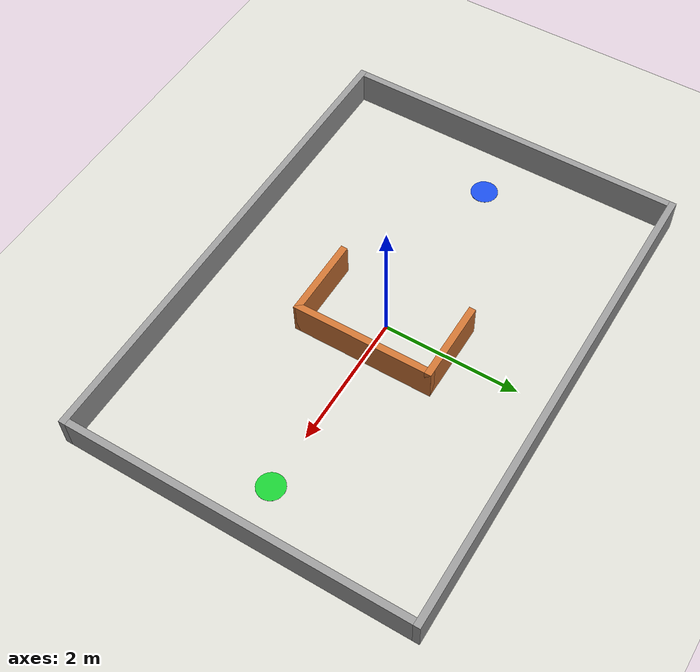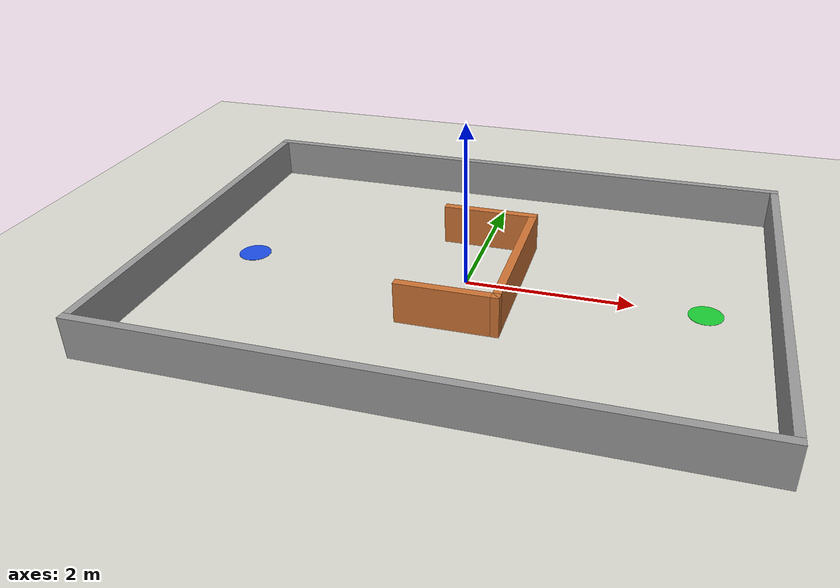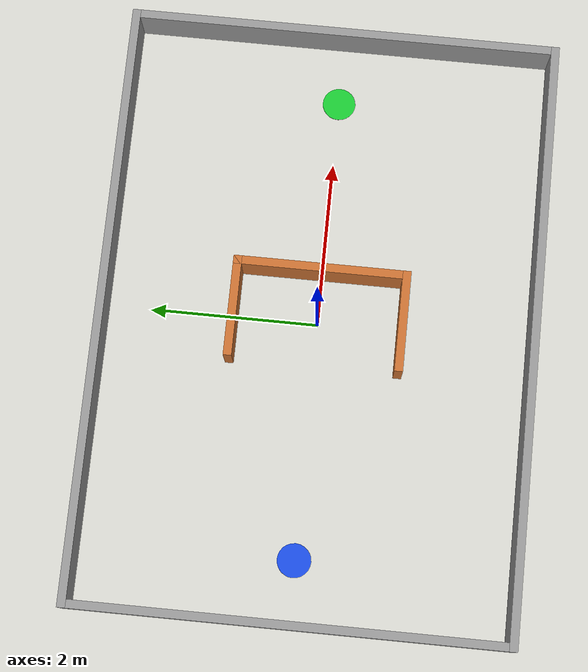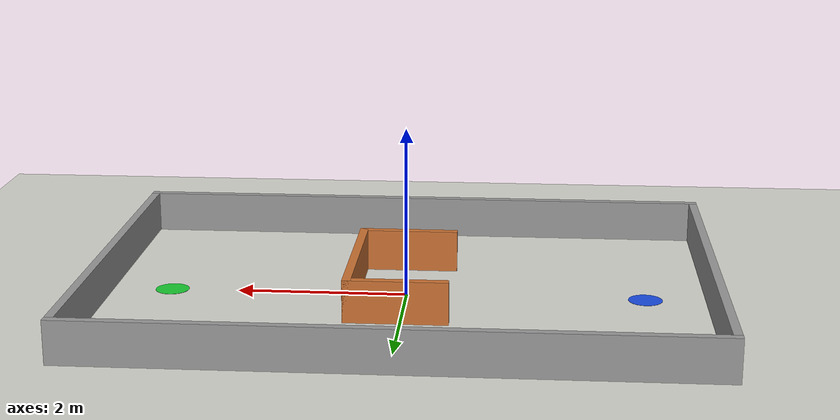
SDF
<?xml version="1.0"?>
<!-- AUTO-GENERATED by tb3_nav_task/worlds.py (u_trap): U-shaped cul-de-sac on the start-goal line (local-minimum test). Edit the Python spec, not this file. -->
<sdf version="1.8">
  <world name="u_trap">
    <physics name="default_physics" type="dart">
      <max_step_size>0.002</max_step_size>
      <real_time_factor>1.0</real_time_factor>
      <real_time_update_rate>500</real_time_update_rate>
    </physics>
    <plugin filename="gz-sim-physics-system" name="gz::sim::systems::Physics"/>
    <plugin filename="gz-sim-user-commands-system" name="gz::sim::systems::UserCommands"/>
    <plugin filename="gz-sim-scene-broadcaster-system" name="gz::sim::systems::SceneBroadcaster"/>
    <plugin filename="gz-sim-sensors-system" name="gz::sim::systems::Sensors">
      <render_engine>ogre2</render_engine>
    </plugin>
    <plugin filename="gz-sim-imu-system" name="gz::sim::systems::Imu"/>
    <scene>
      <ambient>0.6 0.6 0.6 1</ambient>
      <background>0.75 0.8 0.9 1</background>
      <shadows>false</shadows>
    </scene>
    <light type="directional" name="sun">
      <cast_shadows>false</cast_shadows>
      <pose>0 0 10 0 0 0</pose>
      <diffuse>0.9 0.9 0.9 1</diffuse>
      <specular>0.2 0.2 0.2 1</specular>
      <direction>-0.3 0.2 -0.9</direction>
    </light>
    <model name="ground_plane">
      <static>true</static>
      <link name="link">
        <collision name="c"><geometry><plane><normal>0 0 1</normal><size>20 20</size></plane></geometry></collision>
        <visual name="v"><geometry><plane><normal>0 0 1</normal><size>20 20</size></plane></geometry><material><ambient>0.85 0.85 0.82 1</ambient><diffuse>0.85 0.85 0.82 1</diffuse><specular>0.1 0.1 0.1 1</specular></material></visual>
      </link>
    </model>
    <model name="wall_north"><static>true</static><pose>0.0 2.55 0.25 0 0 0.0</pose><link name="link"><collision name="c"><geometry><box><size>7.2 0.1 0.5</size></box></geometry></collision><visual name="v"><geometry><box><size>7.2 0.1 0.5</size></box></geometry><material><ambient>0.6 0.6 0.6 1</ambient><diffuse>0.6 0.6 0.6 1</diffuse><specular>0.1 0.1 0.1 1</specular></material></visual></link></model>
    <model name="wall_south"><static>true</static><pose>0.0 -2.55 0.25 0 0 0.0</pose><link name="link"><collision name="c"><geometry><box><size>7.2 0.1 0.5</size></box></geometry></collision><visual name="v"><geometry><box><size>7.2 0.1 0.5</size></box></geometry><material><ambient>0.6 0.6 0.6 1</ambient><diffuse>0.6 0.6 0.6 1</diffuse><specular>0.1 0.1 0.1 1</specular></material></visual></link></model>
    <model name="wall_east"><static>true</static><pose>3.55 0.0 0.25 0 0 0.0</pose><link name="link"><collision name="c"><geometry><box><size>0.1 5.0 0.5</size></box></geometry></collision><visual name="v"><geometry><box><size>0.1 5.0 0.5</size></box></geometry><material><ambient>0.6 0.6 0.6 1</ambient><diffuse>0.6 0.6 0.6 1</diffuse><specular>0.1 0.1 0.1 1</specular></material></visual></link></model>
    <model name="wall_west"><static>true</static><pose>-3.55 0.0 0.25 0 0 0.0</pose><link name="link"><collision name="c"><geometry><box><size>0.1 5.0 0.5</size></box></geometry></collision><visual name="v"><geometry><box><size>0.1 5.0 0.5</size></box></geometry><material><ambient>0.6 0.6 0.6 1</ambient><diffuse>0.6 0.6 0.6 1</diffuse><specular>0.1 0.1 0.1 1</specular></material></visual></link></model>
    <model name="u_back"><static>true</static><pose>0.6 0.0 0.25 0 0 0.0</pose><link name="link"><collision name="c"><geometry><box><size>0.1 2.1 0.5</size></box></geometry></collision><visual name="v"><geometry><box><size>0.1 2.1 0.5</size></box></geometry><material><ambient>0.8 0.45 0.2 1</ambient><diffuse>0.8 0.45 0.2 1</diffuse><specular>0.1 0.1 0.1 1</specular></material></visual></link></model>
    <model name="u_arm_left"><static>true</static><pose>0.05 1.0 0.25 0 0 0.0</pose><link name="link"><collision name="c"><geometry><box><size>1.2 0.1 0.5</size></box></geometry></collision><visual name="v"><geometry><box><size>1.2 0.1 0.5</size></box></geometry><material><ambient>0.8 0.45 0.2 1</ambient><diffuse>0.8 0.45 0.2 1</diffuse><specular>0.1 0.1 0.1 1</specular></material></visual></link></model>
    <model name="u_arm_right"><static>true</static><pose>0.05 -1.0 0.25 0 0 0.0</pose><link name="link"><collision name="c"><geometry><box><size>1.2 0.1 0.5</size></box></geometry></collision><visual name="v"><geometry><box><size>1.2 0.1 0.5</size></box></geometry><material><ambient>0.8 0.45 0.2 1</ambient><diffuse>0.8 0.45 0.2 1</diffuse><specular>0.1 0.1 0.1 1</specular></material></visual></link></model>
    <model name="start_marker"><static>true</static><pose>-2.8 0.0 0.002 0 0 0</pose><link name="link"><visual name="v"><geometry><cylinder><radius>0.2</radius><length>0.004</length></cylinder></geometry><material><ambient>0.1 0.3 0.9 1</ambient><diffuse>0.1 0.3 0.9 1</diffuse><specular>0.1 0.1 0.1 1</specular></material><cast_shadows>false</cast_shadows></visual></link></model>
    <model name="goal_marker"><static>true</static><pose>2.8 0.0 0.002 0 0 0</pose><link name="link"><visual name="v"><geometry><cylinder><radius>0.2</radius><length>0.004</length></cylinder></geometry><material><ambient>0.1 0.8 0.2 1</ambient><diffuse>0.1 0.8 0.2 1</diffuse><specular>0.1 0.1 0.1 1</specular></material><cast_shadows>false</cast_shadows></visual></link></model>
  </world>
</sdf>
